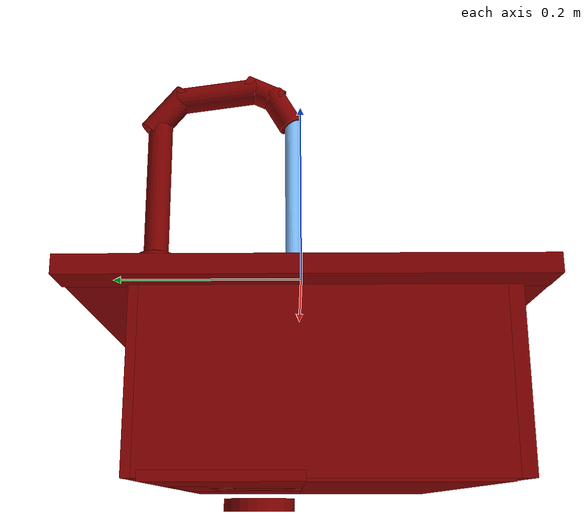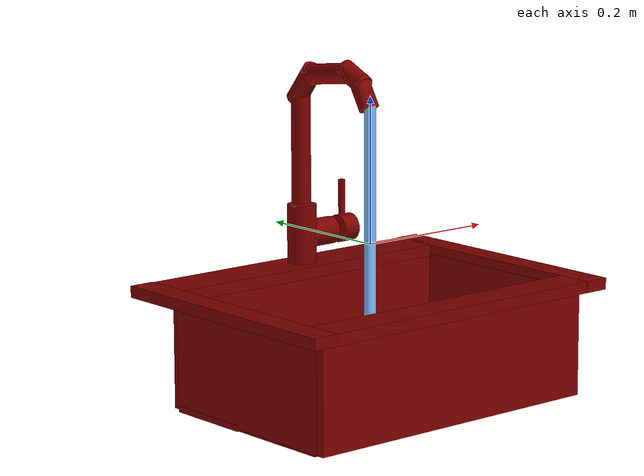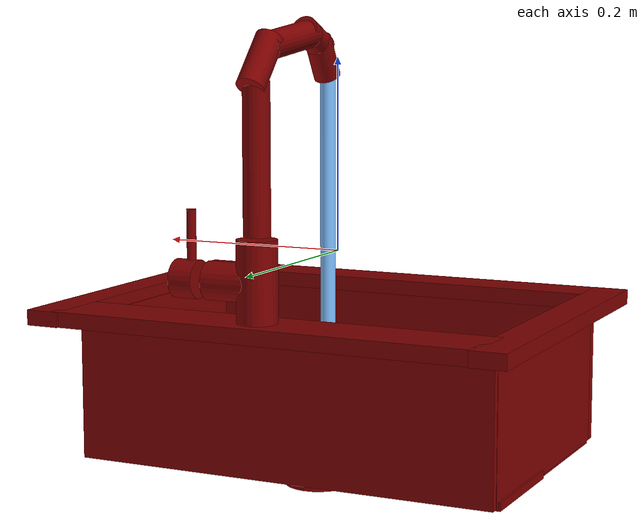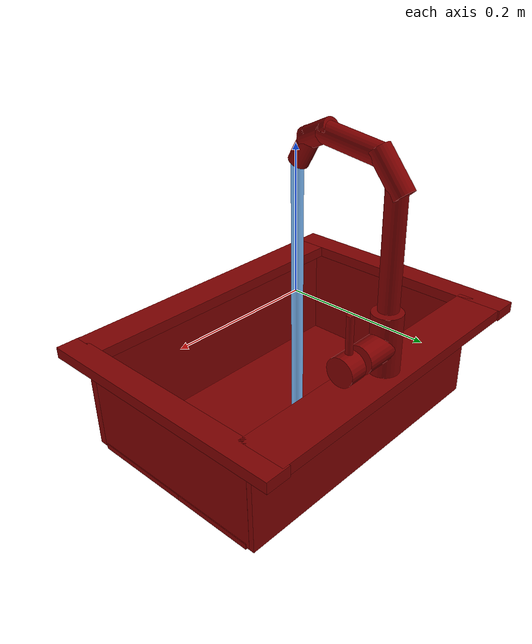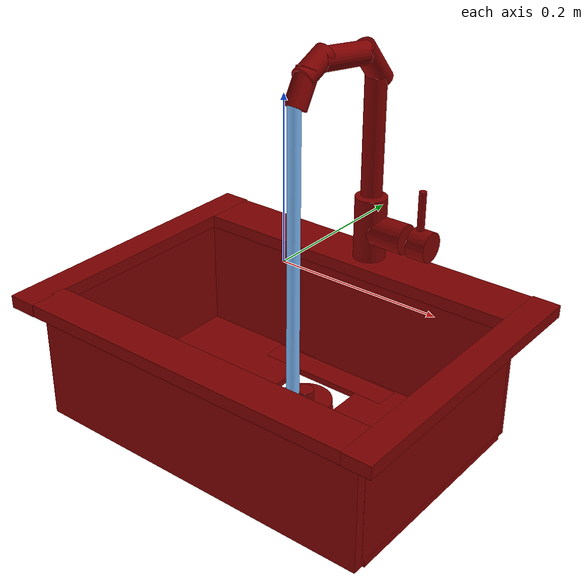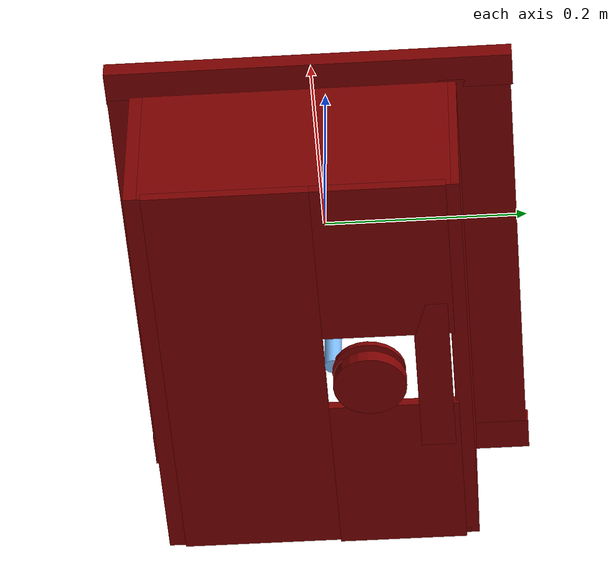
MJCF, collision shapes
<mujoco model="model">
  <compiler angle="radian"/>
  <asset>
    <mesh file="visuals/handle.obj" name="handle_vis"/>
    <mesh file="visuals/Body001.obj" name="Body001_vis"/>
    <mesh file="visuals/Funnel001.obj" name="Funnel001_vis"/>
    <mesh file="visuals/spout.obj" name="spout_vis"/>
    <texture file="visuals/T_BC001.png" name="Body001_material" type="2d"/>
    <material name="Body001_material" rgba="1 1 1 1.0" texture="Body001_material" shininess="0.5" specular="0.3103448502657381"/>
    <texture file="visuals/T_BC001.png" name="handle_material" type="2d"/>
    <material name="handle_material" rgba="1 1 1 1.0" texture="handle_material" shininess="0.5" specular="0.3103448502657381"/>
    <texture file="visuals/T_BC001.png" name="Funnel001_material" type="2d"/>
    <material name="Funnel001_material" rgba="1 1 1 1.0" texture="Funnel001_material" shininess="0.5" specular="0.3103448502657381"/>
    <texture file="visuals/T_BC001.png" name="spout_material" type="2d"/>
    <material name="spout_material" rgba="1 1 1 1.0" texture="spout_material" shininess="0.5" specular="0.3103448502657381"/>
  </asset>
  <default>
    <default class="visual">
      <geom conaffinity="0" contype="0" group="1" type="mesh"/>
    </default>
    <default class="collision">
      <geom group="0" rgba="0.5 0 0 0.5"/>
    </default>
    <default class="spawn">
      <geom group="0" rgba="1 1 1 0.5" contype="0" conaffinity="0"/>
      <site group="0" rgba="1 1 1 0.5"/>
    </default>
    <default class="region">
      <geom group="1" conaffinity="0" contype="0" rgba="0 1 0 0"/>
    </default>
  </default>
  <worldbody>
    <body>
      <body name="object">
        <geom mesh="Body001_vis" type="mesh" solimp="0.998 0.998 0.001" solref="0.001 1" density="100" friction="0.95 0.3 0.1" class="visual" material="Body001_material"/>
        <geom class="collision" type="box" pos="-0.22368885576725006 -0.012871727347373962 -0.1394241899251938" size="0.0030769745353609324 0.14365696907043457 0.07520347088575363" quat="1.0 0.0 0.0 0.0"/>
        <geom class="collision" type="box" pos="0.2235511690378189 -0.012871727347373962 -0.1394241899251938" size="0.004052217584103346 0.14365696907043457 0.07520347088575363" quat="1.0 0.0 0.0 0.0"/>
        <geom class="collision" type="box" pos="0.0005336794420145452 -0.16011393070220947 -0.1394241899251938" size="0.22694265842437744 0.008779622614383698 0.07520347088575363" quat="1.0 0.0 0.0 0.0"/>
        <geom class="collision" type="box" pos="0.0005336799658834934 0.1307528018951416 -0.1394241899251938" size="0.22694265842437744 0.007858645170927048 0.07520347088575363" quat="1.0 0.0 0.0 0.0"/>
        <geom class="collision" type="box" pos="-0.13735198974609375 0.06358040124177933 -0.21282586455345154" size="0.09184502065181732 0.062435053288936615 0.004266052041202784" quat="1.0 0.0 0.0 0.0"/>
        <geom class="collision" type="box" pos="0.13681665062904358 0.06358042359352112 -0.21282586455345154" size="0.09184502065181732 0.06243513152003288 0.004266052041202784" quat="1.0 0.0 0.0 0.0"/>
        <geom class="collision" type="box" pos="0.0010540615767240524 -0.07585248351097107 -0.21282586455345154" size="0.2276076376438141 0.07700951397418976 0.004266052041202784" quat="1.0 0.0 0.0 0.0"/>
        <geom class="collision" type="box" pos="-0.00859563983976841 0.10449408739805222 -0.21282586455345154" size="0.0918469950556755 0.01655489392578602 0.004266136791557074" quat="1.0 0.0 0.0 0.0"/>
        <geom class="collision" type="box" pos="0.0002270700060762465 0.15614350140094757 -0.059423625469207764" size="0.22942407429218292 0.03382787108421326 0.00798372458666563" quat="1.0 0.0 0.0 0.0"/>
        <geom class="collision" type="box" pos="-0.23861829936504364 0.0007226690649986267 -0.059423625469207764" size="0.018441157415509224 0.1914214789867401 0.007983730174601078" quat="1.0 0.0 0.0 0.0"/>
        <geom class="collision" type="box" pos="0.2384607493877411 0.0007226690649986267 -0.059423625469207764" size="0.017806939780712128 0.1914214789867401 0.007983728311955929" quat="1.0 0.0 0.0 0.0"/>
        <geom class="collision" type="box" pos="0.0006787173915654421 -0.16507434844970703 -0.059423625469207764" size="0.22415614128112793 0.0250900536775589 0.00798372644931078" quat="1.0 0.0 0.0 0.0"/>
        <geom class="collision" type="cylinder" pos="0.011010855436325073 0.1572491079568863 -0.01293132547289133" size="0.020531006157398224 0.043195951730012894" quat="1.0 -8.146032826061855e-08 0.0 0.0"/>
        <geom class="collision" type="cylinder" pos="0.037570759654045105 0.1572491079568863 -0.01293132733553648" size="0.019330136477947235 0.02658579871058464" quat="0.7071068286895752 -1.5454311608209537e-08 0.7071067690849304 1.5454309831852697e-08"/>
        <geom class="collision" type="cylinder" pos="0.0005578369600698352 0.04363138973712921 -0.2322062849998474" size="0.03503507003188133 0.006173493340611458" quat="1.0 0.0 0.0 0.0"/>
        <body name="handle">
          <joint axis="1.0 0.0 0.0" pos="0.08344477415084839 0.15723258256912231 -0.012798067182302475" limited="true" name="handle_joint_hinge_0" type="hinge" range="-0.7853981633974483 0.7853981633974483" damping="1" frictionloss="1" armature=".01" stiffness="0.05"/>
          <joint axis="0.0 1.0 0.0" pos="0.08344477415084839 0.15723258256912231 -0.012798067182302475" limited="true" name="handle_joint_hinge_1" type="hinge" range="0.0 0.17453292519943295" damping="1" frictionloss="1" armature=".01" stiffness="0.05"/>
          <geom mesh="handle_vis" type="mesh" solimp="0.998 0.998 0.001" solref="0.001 1" density="100" friction="0.95 0.3 0.1" class="visual" material="handle_material"/>
          <geom class="collision" type="cylinder" pos="0.08744772523641586 0.1572491079568863 -0.012931328266859055" size="0.019330138340592384 0.012631837278604507" quat="0.7071068286895752 -1.5454311608209537e-08 0.7071067690849304 1.5454309831852697e-08"/>
          <geom class="collision" type="cylinder" pos="0.08350061625242233 0.1572490930557251 0.030099794268608093" size="0.004705753177404404 0.025899672880768776" quat="9.099629210140847e-07 4.371146999915254e-08 -8.14603211551912e-08 -1.0"/>
        </body>
        <body name="Funnel001">
          <joint axis="0.0 0.0 1.0" pos="6.792135536670685e-05 0.042575642466545105 -0.22054874897003174" limited="true" name="Funnel001_joint" range="0.0 0.1" type="slide" damping="1" frictionloss="1" armature=".01" stiffness="0.05"/>
          <geom mesh="Funnel001_vis" type="mesh" solimp="0.998 0.998 0.001" solref="0.001 1" density="100" friction="0.95 0.3 0.1" class="visual" material="Funnel001_material"/>
          <geom class="collision" type="cylinder" pos="-0.0002408476429991424 0.04273287206888199 -0.21422043442726135" size="0.03498203307390213 0.0024930608924478292" quat="1.0 0.0 0.0 0.0"/>
          <geom class="collision" type="cylinder" pos="-0.0002408476429991424 0.04273287206888199 -0.205834299325943" size="0.011390655301511288 0.008180427365005016" quat="1.0 0.0 0.0 0.0"/>
        </body>
        <body name="spout">
          <joint axis="0.0 0.0 1.0" pos="0.010517704300582409 0.15763264894485474 0.1301897019147873" limited="true" name="spout_joint" range="-0.7853981633974483 0.7853981633974483" type="hinge" damping="1" frictionloss="1" armature=".01" stiffness="0.05"/>
          <site type="cylinder" rgba="0.5 0.75 1 1" size="0.008058087900280952 0.20167091488838196" pos="0.006900970358401537 0.008961064741015434 -0.012900431640446186" name="water"/>
          <geom mesh="spout_vis" type="mesh" solimp="0.998 0.998 0.001" solref="0.001 1" density="100" friction="0.95 0.3 0.1" class="visual" material="spout_material"/>
          <geom class="collision" type="cylinder" pos="0.01050273235887289 0.1576499342918396 0.10735052824020386" size="0.01348385401070118 0.07447665184736252" quat="1.0 0.0 0.0 0.0"/>
          <geom class="collision" type="cylinder" pos="0.010683842934668064 0.14914017915725708 0.1987507939338684" size="0.01437003817409277 0.02974478341639042" quat="0.9396012425422668 0.34198689460754395 -0.004769474267959595 -0.013104015029966831"/>
          <geom class="collision" type="cylinder" pos="0.008596205152571201 0.09368237107992172 0.21933844685554504" size="0.01414923183619976 0.04494063928723335" quat="0.7500154972076416 0.6612758040428162 -0.01036915834993124 -0.009142313152551651"/>
          <geom class="collision" type="cylinder" pos="0.006797192618250847 0.02151462808251381 0.20039376616477966" size="0.013681190088391304 0.022014377638697624" quat="0.9656696915626526 -0.25977304577827454 0.0 0.0"/>
          <geom class="collision" type="cylinder" pos="0.007448825053870678 0.04178880527615547 0.22042585909366608" size="0.01379110012203455 0.022191235795617104" quat="0.8438840508460999 -0.5365256071090698 0.0 0.0"/>
        </body>
        <geom class="region" name="reg_main" type="box" pos="7.450580596923828e-09 0.0 -0.14506538212299347" size="0.2562747895717621 0.18859225511550903 0.09301382303237915"/>
        <geom class="region" name="reg_basin" type="box" pos="0.0009098872542381287 -0.01547296717762947 -0.13274256139993668" size="0.22062336653470993 0.13902376219630241 0.0744289979338646"/>
      </body>
    </body>
  </worldbody>
  <actuator>
    <motor name="handle_joint_hinge_0_actuator" joint="handle_joint_hinge_0" gear="10"/>
    <motor name="handle_joint_hinge_1_actuator" joint="handle_joint_hinge_1" gear="10"/>
    <motor name="Funnel001_joint_actuator" joint="Funnel001_joint" gear="5"/>
    <motor name="spout_joint_actuator" joint="spout_joint" gear="10"/>
  </actuator>
</mujoco>
